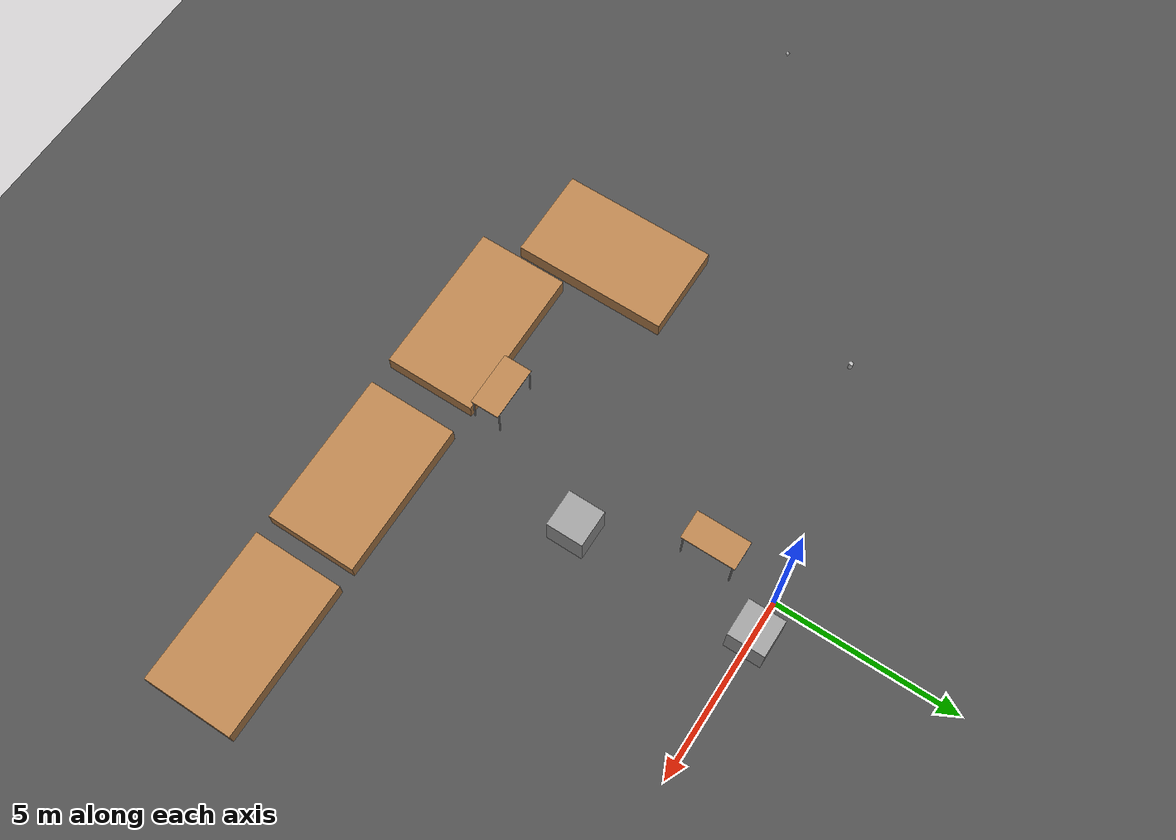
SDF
<sdf version="1.6">
 <world name="default">
  <model name="table_clone_clone">
   <static>1</static>
   <link name="link">
    <collision name="surface">
     <pose>0 0 1 0 -0 0</pose>
     <geometry><box><size>1.5 0.8 0.03</size></box></geometry>
     <surface><friction><ode><mu>0.6</mu><mu2>0.6</mu2></ode></friction></surface>
    </collision>
    <visual name="visual1">
     <pose>0 0 1 0 -0 0</pose>
     <geometry><box><size>1.5 0.8 0.03</size></box></geometry>
     <material>
      <script><uri>file://media/materials/scripts/gazebo.material</uri><name>Gazebo/Wood</name></script>
     </material>
    </visual>
    <collision name="front_left_leg">
     <pose>0.68 0.38 0.5 0 -0 0</pose>
     <geometry><cylinder><radius>0.02</radius><length>1</length></cylinder></geometry>
    </collision>
    <visual name="front_left_leg">
     <pose>0.68 0.38 0.5 0 -0 0</pose>
     <geometry><cylinder><radius>0.02</radius><length>1</length></cylinder></geometry>
     <material>
      <script><uri>file://media/materials/scripts/gazebo.material</uri><name>Gazebo/Grey</name></script>
     </material>
    </visual>
    <collision name="front_right_leg">
     <pose>0.68 -0.38 0.5 0 -0 0</pose>
     <geometry><cylinder><radius>0.02</radius><length>1</length></cylinder></geometry>
    </collision>
    <visual name="front_right_leg">
     <pose>0.68 -0.38 0.5 0 -0 0</pose>
     <geometry><cylinder><radius>0.02</radius><length>1</length></cylinder></geometry>
     <material>
      <script><uri>file://media/materials/scripts/gazebo.material</uri><name>Gazebo/Grey</name></script>
     </material>
    </visual>
    <collision name="back_right_leg">
     <pose>-0.68 -0.38 0.5 0 -0 0</pose>
     <geometry><cylinder><radius>0.02</radius><length>1</length></cylinder></geometry>
    </collision>
    <visual name="back_right_leg">
     <pose>-0.68 -0.38 0.5 0 -0 0</pose>
     <geometry><cylinder><radius>0.02</radius><length>1</length></cylinder></geometry>
     <material>
      <script><uri>file://media/materials/scripts/gazebo.material</uri><name>Gazebo/Grey</name></script>
     </material>
    </visual>
    <collision name="back_left_leg">
     <pose>-0.68 0.38 0.5 0 -0 0</pose>
     <geometry><cylinder><radius>0.02</radius><length>1</length></cylinder></geometry>
    </collision>
    <visual name="back_left_leg">
     <pose>-0.68 0.38 0.5 0 -0 0</pose>
     <geometry><cylinder><radius>0.02</radius><length>1</length></cylinder></geometry>
     <material>
      <script><uri>file://media/materials/scripts/gazebo.material</uri><name>Gazebo/Grey</name></script>
     </material>
    </visual>
   </link>
   <pose>-0.280452 -1.87389 0 0 0 -1.56764</pose>
  </model>
  <model name="table_clone_clone_5_clone_0">
   <static>1</static>
   <link name="link">
    <collision name="surface">
     <pose>0 0 1 0 -0 0</pose>
     <geometry><box><size>1.5 0.8 0.03</size></box></geometry>
     <surface><friction><ode><mu>0.6</mu><mu2>0.6</mu2></ode></friction></surface>
    </collision>
    <visual name="visual1">
     <pose>0 0 1 0 -0 0</pose>
     <geometry><box><size>1.5 0.8 0.03</size></box></geometry>
     <material>
      <script><uri>file://media/materials/scripts/gazebo.material</uri><name>Gazebo/Wood</name></script>
     </material>
    </visual>
    <collision name="front_left_leg">
     <pose>0.68 0.38 0.5 0 -0 0</pose>
     <geometry><cylinder><radius>0.02</radius><length>1</length></cylinder></geometry>
    </collision>
    <visual name="front_left_leg">
     <pose>0.68 0.38 0.5 0 -0 0</pose>
     <geometry><cylinder><radius>0.02</radius><length>1</length></cylinder></geometry>
     <material>
      <script><uri>file://media/materials/scripts/gazebo.material</uri><name>Gazebo/Grey</name></script>
     </material>
    </visual>
    <collision name="front_right_leg">
     <pose>0.68 -0.38 0.5 0 -0 0</pose>
     <geometry><cylinder><radius>0.02</radius><length>1</length></cylinder></geometry>
    </collision>
    <visual name="front_right_leg">
     <pose>0.68 -0.38 0.5 0 -0 0</pose>
     <geometry><cylinder><radius>0.02</radius><length>1</length></cylinder></geometry>
     <material>
      <script><uri>file://media/materials/scripts/gazebo.material</uri><name>Gazebo/Grey</name></script>
     </material>
    </visual>
    <collision name="back_right_leg">
     <pose>-0.68 -0.38 0.5 0 -0 0</pose>
     <geometry><cylinder><radius>0.02</radius><length>1</length></cylinder></geometry>
    </collision>
    <visual name="back_right_leg">
     <pose>-0.68 -0.38 0.5 0 -0 0</pose>
     <geometry><cylinder><radius>0.02</radius><length>1</length></cylinder></geometry>
     <material>
      <script><uri>file://media/materials/scripts/gazebo.material</uri><name>Gazebo/Grey</name></script>
     </material>
    </visual>
    <collision name="back_left_leg">
     <pose>-0.68 0.38 0.5 0 -0 0</pose>
     <geometry><cylinder><radius>0.02</radius><length>1</length></cylinder></geometry>
    </collision>
    <visual name="back_left_leg">
     <pose>-0.68 0.38 0.5 0 -0 0</pose>
     <geometry><cylinder><radius>0.02</radius><length>1</length></cylinder></geometry>
     <material>
      <script><uri>file://media/materials/scripts/gazebo.material</uri><name>Gazebo/Grey</name></script>
     </material>
    </visual>
   </link>
   <pose>-0.816001 -8.38126 0 0 -0 0</pose>
  </model>
  <model name="L_wall_wood">
   <pose>1.29872 -8.7033 0 0 -0 0</pose>
   <link name="Wall_14">
    <collision name="Wall_14_Collision">
     <geometry><box><size>4.25 2.5 0.5</size></box></geometry>
     <pose>0 0 0.25 0 -0 0</pose>
    </collision>
    <visual name="Wall_14_Visual">
     <pose>0 0 0.25 0 -0 0</pose>
     <geometry><box><size>4.25 2.5 0.5</size></box></geometry>
     <material>
      <script><uri>file://media/materials/scripts/gazebo.material</uri><name>Gazebo/Wood</name></script>
      <ambient>1 1 1 1</ambient>
     </material>
     <meta><layer>0</layer></meta>
    </visual>
    <pose>6.238 -1.377 0 0 -0 0</pose>
   </link>
   <link name="Wall_16">
    <collision name="Wall_16_Collision">
     <geometry><box><size>4.25 2.5 0.5</size></box></geometry>
     <pose>0 0 0.25 0 -0 0</pose>
    </collision>
    <visual name="Wall_16_Visual">
     <pose>0 0 0.25 0 -0 0</pose>
     <geometry><box><size>4.25 2.5 0.5</size></box></geometry>
     <material>
      <script><uri>file://media/materials/scripts/gazebo.material</uri><name>Gazebo/Wood</name></script>
      <ambient>1 1 1 1</ambient>
     </material>
     <meta><layer>0</layer></meta>
    </visual>
    <pose>1.505 -1.377 0 0 -0 3.14159</pose>
   </link>
   <link name="Wall_18">
    <collision name="Wall_18_Collision">
     <geometry><box><size>4.25 2.5 0.5</size></box></geometry>
     <pose>0 0 0.25 0 -0 0</pose>
    </collision>
    <visual name="Wall_18_Visual">
     <pose>0 0 0.25 0 -0 0</pose>
     <geometry><box><size>4.25 2.5 0.5</size></box></geometry>
     <material>
      <script><uri>file://media/materials/scripts/gazebo.material</uri><name>Gazebo/Wood</name></script>
      <ambient>1 1 1 1</ambient>
     </material>
     <meta><layer>0</layer></meta>
    </visual>
    <pose>-3.485 -1.377 0 0 -0 3.14159</pose>
   </link>
   <link name="Wall_20">
    <collision name="Wall_20_Collision">
     <geometry><box><size>4.25 2.5 0.5</size></box></geometry>
     <pose>0 0 0.25 0 -0 0</pose>
    </collision>
    <visual name="Wall_20_Visual">
     <pose>0 0 0.25 0 -0 0</pose>
     <geometry><box><size>4.25 2.5 0.5</size></box></geometry>
     <material>
      <script><uri>file://media/materials/scripts/gazebo.material</uri><name>Gazebo/Wood</name></script>
      <ambient>1 1 1 1</ambient>
     </material>
     <meta><layer>0</layer></meta>
    </visual>
    <pose>-7.113 0.502 0 0 -0 1.5708</pose>
   </link>
   <static>1</static>
  </model>
  <model name="unit_box_6">
   <pose>1.17746 0.02476 1 0 -0 0.00037</pose>
   <link name="link">
    <inertial>
     <mass>1</mass>
     <inertia>
      <ixx>0.166667</ixx>
      <ixy>0</ixy>
      <ixz>0</ixz>
      <iyy>0.166667</iyy>
      <iyz>0</iyz>
      <izz>0.166667</izz>
     </inertia>
    </inertial>
    <collision name="collision"><geometry><box><size>1 1 1</size></box></geometry></collision>
    <visual name="visual">
     <geometry><box><size>1 1 1</size></box></geometry>
     <material>
      <script><name>Gazebo/Grey</name><uri>file://media/materials/scripts/gazebo.material</uri></script>
     </material>
    </visual>
   </link>
  </model>
  <model name="unit_box_7">
   <pose>1.21385 -4.87739 1 0 -0 3.2e-05</pose>
   <link name="link">
    <inertial>
     <mass>1</mass>
     <inertia>
      <ixx>0.166667</ixx>
      <ixy>0</ixy>
      <ixz>0</ixz>
      <iyy>0.166667</iyy>
      <iyz>0</iyz>
      <izz>0.166667</izz>
     </inertia>
    </inertial>
    <collision name="collision"><geometry><box><size>1 1 1</size></box></geometry></collision>
    <visual name="visual">
     <geometry><box><size>1 1 1</size></box></geometry>
     <material>
      <script><name>Gazebo/Grey</name><uri>file://media/materials/scripts/gazebo.material</uri></script>
     </material>
    </visual>
   </link>
  </model>
  <model name="frc2016_ball_clone_8_clone_16">
   <pose>-14 -7.59251 0.0998 -2.5e-05 3.1e-05 -0</pose>
   <link name="link">
    <inertial>
     <mass>0.213</mass>
     <inertia>
      <ixx>0.00322667</ixx>
      <ixy>0</ixy>
      <ixz>0</ixz>
      <iyy>0.00322667</iyy>
      <iyz>0</iyz>
      <izz>0.00322667</izz>
     </inertia>
    </inertial>
    <visual name="visual"><geometry><sphere><radius>0.0506132</radius></sphere></geometry></visual>
    <collision name="collision">
     <geometry><sphere><radius>0.0506132</radius></sphere></geometry>
     <surface>
      <bounce><restitution_coefficient>0.15937</restitution_coefficient><threshold>0</threshold></bounce>
      <contact><ode><max_vel>100</max_vel><min_depth>0.001</min_depth></ode></contact>
     </surface>
    </collision>
   </link>
  </model>
  <model name="beer_clone">
   <link name="link">
    <pose>0 0 0.115 0 -0 0</pose>
    <inertial>
     <mass>0.39</mass>
     <inertia><ixx>0.00058</ixx><ixy>0</ixy><ixz>0</ixz><iyy>0.00058</iyy><iyz>0</iyz><izz>0.00019</izz></inertia>
    </inertial>
    <collision name="collision">
     <geometry><cylinder><radius>0.055</radius><length>0.23</length></cylinder></geometry>
    </collision>
    <visual name="visual">
     <geometry><cylinder><radius>0.055</radius><length>0.23</length></cylinder></geometry>
     <material>
      <script>
       <uri>model://beer/materials/scripts</uri>
       <uri>model://beer/materials/textures</uri>
       <name>Beer/Diffuse</name>
      </script>
     </material>
    </visual>
   </link>
   <pose>-5.98751 -1.38887 0.964754 1.8e-05 3.1e-05 -0.001535</pose>
  </model>
  <model name="asphalt_plane">
   <static>1</static>
   <link name="link">
    <collision name="collision"><geometry><box><size>1231.34 219.833 0.1</size></box></geometry></collision>
    <visual name="visual">
     <cast_shadows>0</cast_shadows>
     <geometry><box><size>1231.34 219.833 0.1</size></box></geometry>
     <material>
      <script>
       <uri>model://asphalt_plane/materials/scripts</uri>
       <uri>model://asphalt_plane/materials/textures</uri>
       <name>vrc/asphalt</name>
      </script>
     </material>
    </visual>
   </link>
   <pose>-29.4694 28.4475 -0.062447 0 -0 0</pose>
  </model>
 </world>
</sdf>
